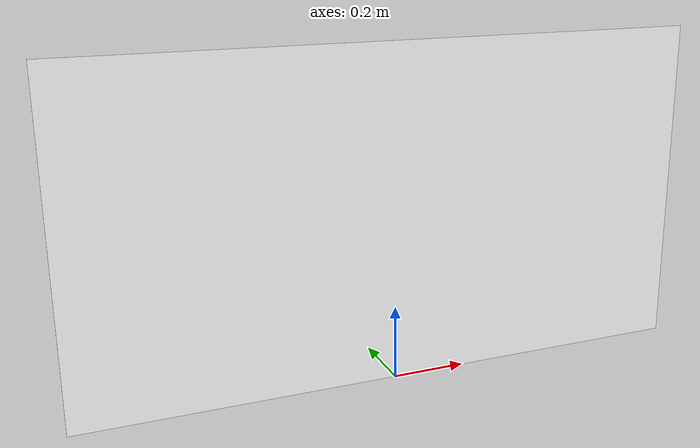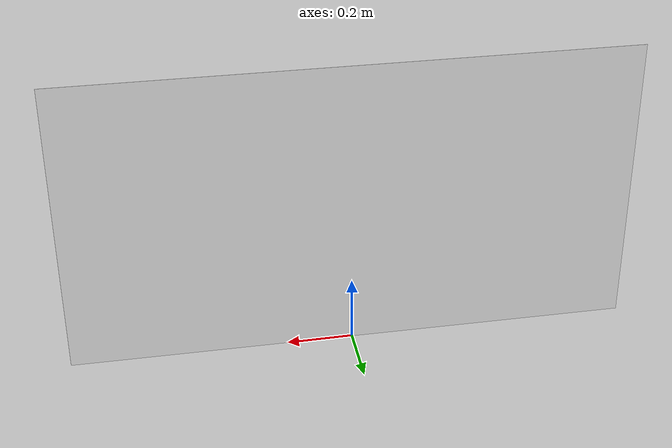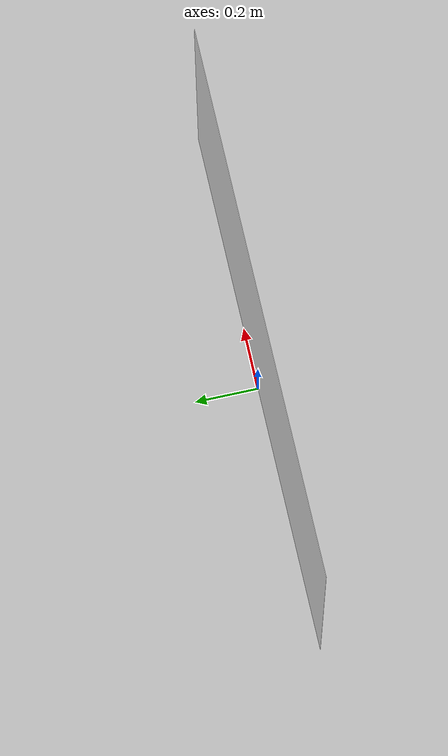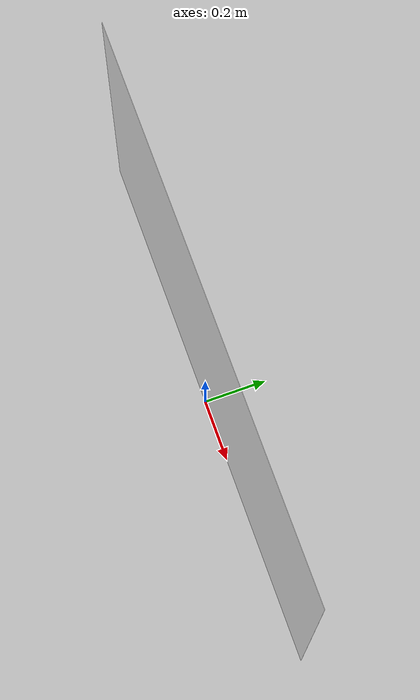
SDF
<?xml version='1.0'?>
<sdf version='1.7'>
<model name='demo_slide-0'>
  <static>1</static>
  <link name='link'>
    <pose>0 0 0.45 0 -0 0</pose>
    <visual name='visual'>
      <cast_shadows>0</cast_shadows>
      <transparency>0.01</transparency>
      <geometry>
        <box>
          <size>1.7 0.001 0.9</size>
        </box>
      </geometry>
      <material>
        <!-- Classic -->
        <script>
          <uri>model://demo_slide-0/materials/scripts</uri>
          <uri>model://demo_slide-0/materials/textures</uri>
          <name>Slides/demo_slide_0</name>
        </script>
        <!-- Ignition -->
        <diffuse>1 1 1 1</diffuse>
        <emissive>0.5 0.5 0.5 1</emissive>
        <pbr>
          <metal>
            <albedo_map>model://demo_slide-0/materials/textures/demo_slide-0.png</albedo_map>
            <emissive_map>model://demo_slide-0/materials/textures/demo_slide-0.png</emissive_map>
            <roughness>0</roughness>
          </metal>
        </pbr>
      </material>
    </visual>
  </link>
</model>
</sdf>
